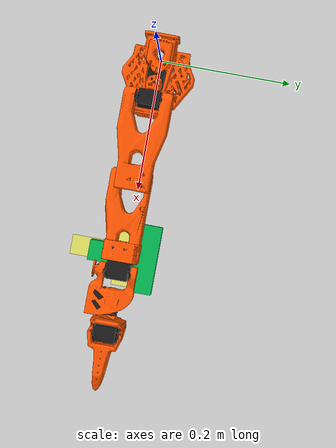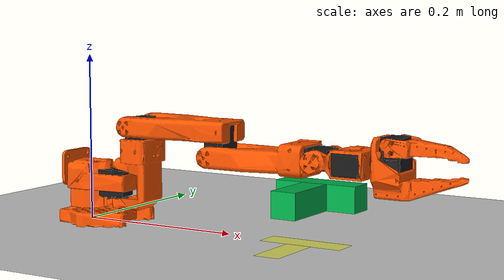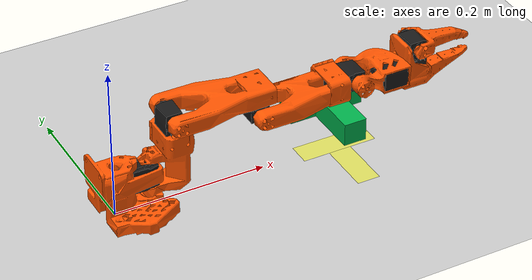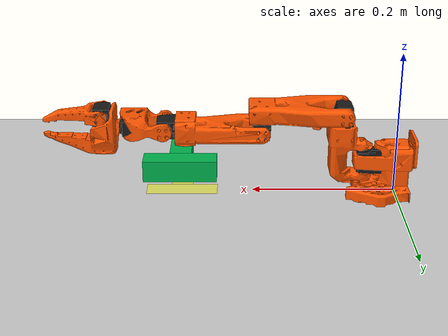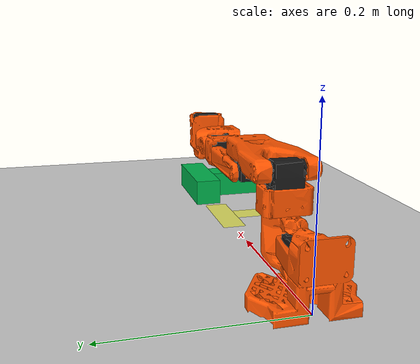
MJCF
<mujoco model="so_arm100 scene">
  <include file="so_arm100_leader.xml"/>

  <statistic center="0 -0.2 0.1" extent="0.4"/>

  <visual>
    <headlight diffuse="0.6 0.6 0.6" ambient="0.3 0.3 0.3" specular="0 0 0"/>
    <rgba haze="0.15 0.25 0.35 1"/>
    <global azimuth="140" elevation="-30"/>
  </visual>

  <asset>
    <texture type="skybox" builtin="gradient" rgb1="0.3 0.5 0.7" rgb2="0 0 0" width="512" height="3072"/>
    <texture type="2d" name="groundplane" builtin="checker" mark="edge" rgb1="0.2 0.3 0.4" rgb2="0.1 0.2 0.3"
      markrgb="0.8 0.8 0.8" width="300" height="300"/>
    <material name="groundplane" texture="groundplane" texuniform="true" texrepeat="5 5" reflectance="0.2"/>
  </asset>
    <worldbody>
    <light directional="true" diffuse=".8 .8 .8" specular=".2 .2 .2" pos="0 0 5" dir="0 0 -1"/>
    <geom name="floor" type="plane" size="1 1 .05" pos="0 0 0" rgba=".8 .8 .8 1"/>

    <body name="T_block" pos="0.3 0 0.05">
        <freejoint name="object_joint"/>
        <geom name="T_top" type="box" size="0.05 0.015 0.015" pos="0 0.035 0" mass="0.05" rgba="0 0.7 0.3 1"/>
        <geom name="T_stem" type="box" size="0.015 0.035 0.015" pos="0 -0.015 0" mass="0.05" rgba="0 0.7 0.3 1"/>
    </body>

    <body name="T_sign" pos="0.3 0 0.001">
        <geom type="box" size="0.05 0.015 0.0001" rgba="1 1 0 0.5" contype="0" conaffinity="0"/>
        <geom type="box" size="0.015 0.035 0.0001" pos="0 -0.05 0" rgba="1 1 0 0.5" contype="0" conaffinity="0"/>
    </body>
    <camera name="top_view" pos="0.3 0 0.8" euler="0 0 0"/>
    <camera name="side_view" pos="0.255 -0.7 0.047" xyaxes="0.999 0.047 0.000 0.010 -0.208 0.978"/>
    </worldbody>
</mujoco>

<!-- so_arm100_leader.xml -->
<mujoco model="so_arm100">
  <compiler angle="radian" meshdir="assets/"/>

  <option impratio="10" cone="elliptic"/>

  <size nkey="1"/>

  <default>
    <default class="so_arm100">
      <joint armature="0.1" frictionloss="0.1"/>
      <general ctrlrange="-3.14158 3.14158" forcerange="-35 35" biastype="affine" gainprm="50" biasprm="0 -50 1"/>
      <default class="Rotation">
        <joint range="-2.2 2.2"/>
      </default>
      <default class="Pitch">
        <joint range="-3.14158 0.2"/>
      </default>
      <default class="Elbow">
        <joint range="0 3.14158"/>
      </default>
      <default class="Wrist_Pitch">
        <joint range="-2 1.8"/>
      </default>
      <default class="Wrist_Roll">
        <joint range="-3.14158 3.14158"/>
      </default>
      <default class="Jaw">
        <joint range="-0.2 2"/>
      </default>
      <default class="visual">
        <geom type="mesh" contype="0" conaffinity="0" group="2" density="0" material="orange"/>
        <default class="motor_visual">
          <geom material="black"/>
        </default>
      </default>
      <default class="collision">
        <geom type="mesh" group="3"/>
        <default class="finger_collision">
          <geom type="box" solref="0.01" solimp="2 1 0.01"/>
        </default>
      </default>
    </default>
  </default>

  <asset>
    <material name="orange" specular="0.1" shininess="0.1" rgba="1 0.331 0 1"/>
    <material name="black" specular="0.1" shininess="0.1" rgba="0.1 0.1 0.1 1"/>
    <mesh name="Base" content_type="model/stl" file="Base.stl"/>
    <mesh name="Base_Motor" content_type="model/stl" file="Base_Motor.stl"/>
    <mesh name="Rotation_Pitch" content_type="model/stl" file="Rotation_Pitch.stl"/>
    <mesh name="Rotation_Pitch_Motor" content_type="model/stl" file="Rotation_Pitch_Motor.stl"/>
    <mesh name="Upper_Arm" content_type="model/stl" file="Upper_Arm.stl"/>
    <mesh name="Upper_Arm_Motor" content_type="model/stl" file="Upper_Arm_Motor.stl"/>
    <mesh name="Lower_Arm" content_type="model/stl" file="Lower_Arm.stl"/>
    <mesh name="Lower_Arm_Motor" content_type="model/stl" file="Lower_Arm_Motor.stl"/>
    <mesh name="Wrist_Pitch_Roll" content_type="model/stl" file="Wrist_Pitch_Roll.stl"/>
    <mesh name="Wrist_Pitch_Roll_Motor" content_type="model/stl" file="Wrist_Pitch_Roll_Motor.stl"/>
    <mesh name="Fixed_Jaw" content_type="model/stl" file="Fixed_Jaw.stl"/>
    <mesh name="Fixed_Jaw_Motor" content_type="model/stl" file="Fixed_Jaw_Motor.stl"/>
    <mesh name="Fixed_Jaw_Collision_1" content_type="model/stl" file="Fixed_Jaw_Collision_1.stl"/>
    <mesh name="Fixed_Jaw_Collision_2" content_type="model/stl" file="Fixed_Jaw_Collision_2.stl"/>
    <mesh name="Moving_Jaw" content_type="model/stl" file="Moving_Jaw.stl"/>
    <mesh name="Moving_Jaw_Collision_1" content_type="model/stl" file="Moving_Jaw_Collision_1.stl"/>
    <mesh name="Moving_Jaw_Collision_2" content_type="model/stl" file="Moving_Jaw_Collision_2.stl"/>
    <mesh name="Moving_Jaw_Collision_3" content_type="model/stl" file="Moving_Jaw_Collision_3.stl"/>
  </asset>

  <worldbody>
    <body name="target_mocap" pos="0.49 0 0.085" mocap="true">
      <geom size="0.05" contype="0" conaffinity="0" group="1" rgba="1 0 0 0" euler="0 0 0"/>
    </body>
    <body name="Base" childclass="so_arm100" quat="0.707388 0 0 0.706825">
      <geom class="visual" mesh="Base"/>
      <geom class="motor_visual" mesh="Base_Motor"/>
      <geom class="collision" mesh="Base"/>
      <body name="Rotation_Pitch" pos="0 -0.0452 0.0165" quat="0.707105 0.707108 0 0">
        <inertial pos="-9.07886e-05 0.0590972 0.031089" quat="0.363978 0.441169 -0.623108 0.533504" mass="0.119226" diaginertia="5.94278e-05 5.89975e-05 3.13712e-05"/>
        <joint name="Rotation" class="Rotation" pos="0 0 0" axis="0 1 0"/>
        <geom class="visual" mesh="Rotation_Pitch"/>
        <geom class="motor_visual" mesh="Rotation_Pitch_Motor"/>
        <geom class="collision" mesh="Rotation_Pitch"/>
        <body name="Upper_Arm" pos="0 0.1025 0.0306" quat="0.707109 0.707105 0 0">
          <inertial pos="-1.72052e-05 0.0701802 0.00310545" quat="0.50104 0.498994 -0.493562 0.50632" mass="0.162409" diaginertia="0.000213312 0.000167164 7.01522e-05"/>
          <joint name="Pitch" class="Pitch" pos="0 0 0" axis="1 0 0"/>
          <geom class="visual" mesh="Upper_Arm"/>
          <geom class="motor_visual" mesh="Upper_Arm_Motor"/>
          <geom class="collision" mesh="Upper_Arm"/>
          <body name="Lower_Arm" pos="0 0.11257 0.028" quat="0.707109 -0.707105 0 0">
            <inertial pos="-0.00339604 0.00137796 0.0768007" quat="0.701995 0.0787996 0.0645626 0.704859" mass="0.147968" diaginertia="0.000138803 0.000107748 4.84242e-05"/>
            <joint name="Elbow" class="Elbow" pos="0 0 0" axis="1 0 0"/>
            <geom class="visual" mesh="Lower_Arm"/>
            <geom class="motor_visual" mesh="Lower_Arm_Motor"/>
            <geom class="collision" mesh="Lower_Arm"/>
            <body name="Wrist_Pitch_Roll" pos="0 0.0052 0.1349" quat="0.707109 -0.707105 0 0">
              <inertial pos="-0.00852653 -0.0352279 -2.34622e-05" quat="-0.0522806 0.705235 0.0549524 0.704905" mass="0.0661321" diaginertia="3.45403e-05 2.39041e-05 1.94704e-05"/>
              <joint name="Wrist_Pitch" class="Wrist_Pitch" pos="0 0 0" axis="1 0 0"/>
              <geom class="visual" mesh="Wrist_Pitch_Roll"/>
              <geom class="motor_visual" mesh="Wrist_Pitch_Roll_Motor"/>
              <geom class="collision" mesh="Wrist_Pitch_Roll"/>
              <body name="Fixed_Jaw" pos="0 -0.0601 0" quat="0.707109 0 0.707105 0">
                <inertial pos="0.00552377 -0.0280167 0.000483583" quat="0.41836 0.620891 -0.350644 0.562599" mass="0.0929859" diaginertia="5.03136e-05 4.64098e-05 2.72961e-05"/>
                <joint name="Wrist_Roll" class="Wrist_Roll" pos="0 0 0" axis="0 1 0"/>
                <geom class="visual" mesh="Fixed_Jaw"/>
                <geom class="motor_visual" mesh="Fixed_Jaw_Motor"/>
                <geom class="collision" mesh="Fixed_Jaw_Collision_1"/>
                <geom class="collision" mesh="Fixed_Jaw_Collision_2"/>
                <geom name="fixed_jaw_pad_1" class="finger_collision" size="0.001 0.005 0.004" pos="0.0089 -0.1014 0"/>
                <geom name="fixed_jaw_pad_2" class="finger_collision" size="0.001 0.005 0.006" pos="0.0109 -0.0914 0"/>
                <geom name="fixed_jaw_pad_3" class="finger_collision" size="0.001 0.01 0.007" pos="0.0126 -0.0768 0"/>
                <geom name="fixed_jaw_pad_4" class="finger_collision" size="0.001 0.01 0.008" pos="0.0143 -0.0572 0"/>
                <body name="Moving_Jaw" pos="-0.0202 -0.0244 0" quat="1.34924e-11 -3.67321e-06 1 -3.67321e-06">
                  <inertial pos="-0.00161745 -0.0303473 0.000449646" quat="0.696562 0.716737 -0.0239844 -0.0227026" mass="0.0202444" diaginertia="1.11265e-05 8.99651e-06 2.99548e-06"/>
                  <joint name="Jaw" class="Jaw" pos="0 0 0" axis="0 0 1"/>
                  <geom class="visual" mesh="Moving_Jaw"/>
                  <geom class="collision" mesh="Moving_Jaw_Collision_1"/>
                  <geom class="collision" mesh="Moving_Jaw_Collision_2"/>
                  <geom class="collision" mesh="Moving_Jaw_Collision_3"/>
                  <geom name="moving_jaw_pad_1" class="finger_collision" size="0.001 0.005 0.004" pos="-0.0113 -0.077 0"/>
                  <geom name="moving_jaw_pad_2" class="finger_collision" size="0.001 0.005 0.006" pos="-0.0093 -0.067 0"/>
                  <geom name="moving_jaw_pad_3" class="finger_collision" size="0.001 0.01 0.006" pos="-0.0073 -0.055 0"/>
                  <geom name="moving_jaw_pad_4" class="finger_collision" size="0.001 0.01 0.008" pos="-0.0073 -0.035 0"/>
                </body>
              </body>
            </body>
          </body>
        </body>
      </body>
    </body>
  </worldbody>

  <contact>
    <exclude body1="Base" body2="Rotation_Pitch"/>
  </contact>
  <equality>
    <weld name="joint_weld" body1="target_mocap" body2="Fixed_Jaw" anchor="0 0 0"  torquescale="1"/>
  </equality>
  <actuator>
    <general name="Rotation" class="Rotation" joint="Rotation" biasprm="0 -50 -5.12815"/>
    <general name="Pitch" class="Pitch" joint="Pitch" biasprm="0 -50 -5.00176"/>
    <general name="Elbow" class="Elbow" joint="Elbow" biasprm="0 -50 -4.66631"/>
    <general name="Wrist_Pitch" class="Wrist_Pitch" joint="Wrist_Pitch" biasprm="0 -50 -4.49799"/>
    <general name="Wrist_Roll" class="Wrist_Roll" joint="Wrist_Roll" biasprm="0 -50 -4.4731"/>
    <general name="Jaw" class="Jaw" joint="Jaw" biasprm="0 -50 -4.47276"/>
  </actuator>
</mujoco>
